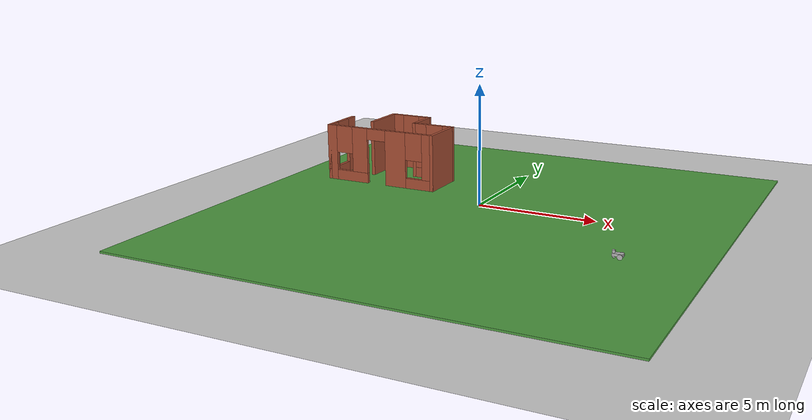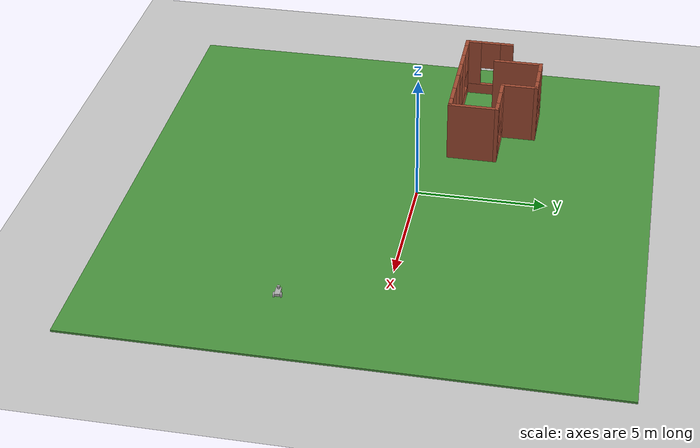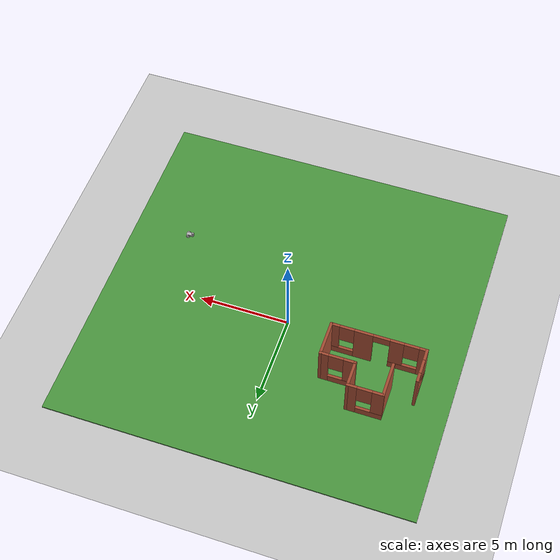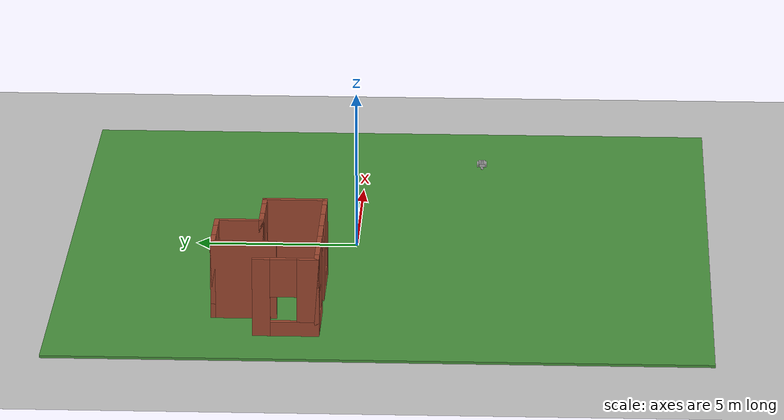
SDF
<sdf version="1.6">
 <world name="default">
  <light name="sun" type="directional">
   <pose>0 0 10 0 -0 0</pose>
   <diffuse>0.8 0.8 0.8 1</diffuse>
   <specular>0.1 0.1 0.1 1</specular>
   <attenuation>
    <range>1000</range>
    <constant>0.9</constant>
    <linear>0.01</linear>
    <quadratic>0.001</quadratic>
   </attenuation>
   <direction>-0.5 0.5 -1</direction>
  </light>
  <model name="ground_plane">
   <static>1</static>
   <link name="link">
    <collision name="collision">
     <geometry><plane><normal>0 0 1</normal><size>100 100</size></plane></geometry>
     <surface><friction><ode><mu>100</mu><mu2>50</mu2></ode></friction></surface>
    </collision>
    <visual name="visual">
     <cast_shadows>0</cast_shadows>
     <geometry><plane><normal>0 0 1</normal><size>100 100</size></plane></geometry>
     <material>
      <script><uri>file://media/materials/scripts/gazebo.material</uri><name>Gazebo/Grey</name></script>
     </material>
    </visual>
   </link>
  </model>
  <gravity>0 0 -9.8</gravity>
  <magnetic_field>6e-06 2.3e-05 -4.2e-05</magnetic_field>
  <atmosphere type="adiabatic"/>
  <physics name="default_physics" default="0" type="ode">
   <max_step_size>0.001</max_step_size>
   <real_time_factor>1</real_time_factor>
   <real_time_update_rate>1000</real_time_update_rate>
  </physics>
  <scene>
   <ambient>0.4 0.4 0.4 1</ambient>
   <sky><clouds><speed>12</speed></clouds></sky>
   <shadows>1</shadows>
  </scene>
  <spherical_coordinates>
   <surface_model>EARTH_WGS84</surface_model>
   <latitude_deg>0</latitude_deg>
   <longitude_deg>0</longitude_deg>
   <elevation>0</elevation>
   <heading_deg>0</heading_deg>
  </spherical_coordinates>
  <model name="grass_0">
   <static>1</static>
   <link name="link">
    <collision name="collision"><geometry><box><size>20 20 0.1</size></box></geometry></collision>
    <visual name="visual">
     <cast_shadows>0</cast_shadows>
     <geometry><box><size>20 20 0.1</size></box></geometry>
     <material>
      <script>
       <uri>model://grass/materials/scripts</uri>
       <uri>model://grass/materials/textures</uri>
       <name>vrc/grass</name>
      </script>
     </material>
    </visual>
   </link>
   <pose>0.361504 -1.01514 0 0 -0 0</pose>
  </model>
  <model name="buil1">
   <pose>-5.20351 2.44747 0 0 -0 0</pose>
   <link name="Wall_0">
    <pose>-2.55 -0.675 0 0 0 -1.5708</pose>
    <visual name="Wall_0_Visual_0">
     <pose>-0.7325 0 1.25 0 -0 0</pose>
     <geometry><box><size>0.535 0.15 2.5</size></box></geometry>
     <material>
      <script><uri>file://media/materials/scripts/gazebo.material</uri><name>Gazebo/Bricks</name></script>
      <ambient>0.760784 0.662745 0.627451 1</ambient>
     </material>
    </visual>
    <collision name="Wall_0_Collision_0">
     <geometry><box><size>0.535 0.15 2.5</size></box></geometry>
     <pose>-0.7325 0 1.25 0 -0 0</pose>
    </collision>
    <visual name="Wall_0_Visual_1">
     <pose>0.2675 0 0.25 0 -0 0</pose>
     <geometry><box><size>1.465 0.15 0.5</size></box></geometry>
     <material>
      <script><uri>file://media/materials/scripts/gazebo.material</uri><name>Gazebo/Bricks</name></script>
      <ambient>0.760784 0.662745 0.627451 1</ambient>
     </material>
    </visual>
    <collision name="Wall_0_Collision_1">
     <geometry><box><size>1.465 0.15 0.5</size></box></geometry>
     <pose>0.2675 0 0.25 0 -0 0</pose>
    </collision>
    <visual name="Wall_0_Visual_2">
     <pose>0.6675 0 1.5 0 -0 0</pose>
     <geometry><box><size>0.665 0.15 2</size></box></geometry>
     <material>
      <script><uri>file://media/materials/scripts/gazebo.material</uri><name>Gazebo/Bricks</name></script>
      <ambient>0.760784 0.662745 0.627451 1</ambient>
     </material>
    </visual>
    <collision name="Wall_0_Collision_2">
     <geometry><box><size>0.665 0.15 2</size></box></geometry>
     <pose>0.6675 0 1.5 0 -0 0</pose>
    </collision>
    <visual name="Wall_0_Visual_3">
     <pose>-0.065 0 1.9 0 -0 0</pose>
     <geometry><box><size>0.8 0.15 1.2</size></box></geometry>
     <material>
      <script><uri>file://media/materials/scripts/gazebo.material</uri><name>Gazebo/Bricks</name></script>
      <ambient>0.760784 0.662745 0.627451 1</ambient>
     </material>
    </visual>
    <collision name="Wall_0_Collision_3">
     <geometry><box><size>0.8 0.15 1.2</size></box></geometry>
     <pose>-0.065 0 1.9 0 -0 0</pose>
    </collision>
   </link>
   <link name="Wall_1">
    <pose>0 -1.6 0 0 -0 0</pose>
    <visual name="Wall_1_Visual_0">
     <pose>-2.3925 0 1.25 0 -0 0</pose>
     <geometry><box><size>0.465 0.15 2.5</size></box></geometry>
     <material>
      <script><uri>file://media/materials/scripts/gazebo.material</uri><name>Gazebo/Bricks</name></script>
      <ambient>0.760784 0.662745 0.627451 1</ambient>
     </material>
    </visual>
    <collision name="Wall_1_Collision_0">
     <geometry><box><size>0.465 0.15 2.5</size></box></geometry>
     <pose>-2.3925 0 1.25 0 -0 0</pose>
    </collision>
    <visual name="Wall_1_Visual_1">
     <pose>0.79 0 1.25 0 -0 0</pose>
     <geometry><box><size>1 0.15 2.5</size></box></geometry>
     <material>
      <script><uri>file://media/materials/scripts/gazebo.material</uri><name>Gazebo/Bricks</name></script>
      <ambient>0.760784 0.662745 0.627451 1</ambient>
     </material>
    </visual>
    <collision name="Wall_1_Collision_1">
     <geometry><box><size>1 0.15 2.5</size></box></geometry>
     <pose>0.79 0 1.25 0 -0 0</pose>
    </collision>
    <visual name="Wall_1_Visual_2">
     <pose>-1.385 0 0.25 0 -0 0</pose>
     <geometry><box><size>1.55 0.15 0.5</size></box></geometry>
     <material>
      <script><uri>file://media/materials/scripts/gazebo.material</uri><name>Gazebo/Bricks</name></script>
      <ambient>0.760784 0.662745 0.627451 1</ambient>
     </material>
    </visual>
    <collision name="Wall_1_Collision_2">
     <geometry><box><size>1.55 0.15 0.5</size></box></geometry>
     <pose>-1.385 0 0.25 0 -0 0</pose>
    </collision>
    <visual name="Wall_1_Visual_3">
     <pose>1.9575 0 0.25 0 -0 0</pose>
     <geometry><box><size>1.335 0.15 0.5</size></box></geometry>
     <material>
      <script><uri>file://media/materials/scripts/gazebo.material</uri><name>Gazebo/Bricks</name></script>
      <ambient>0.760784 0.662745 0.627451 1</ambient>
     </material>
    </visual>
    <collision name="Wall_1_Collision_3">
     <geometry><box><size>1.335 0.15 0.5</size></box></geometry>
     <pose>1.9575 0 0.25 0 -0 0</pose>
    </collision>
    <visual name="Wall_1_Visual_4">
     <pose>-0.985 0 1.5 0 -0 0</pose>
     <geometry><box><size>0.75 0.15 2</size></box></geometry>
     <material>
      <script><uri>file://media/materials/scripts/gazebo.material</uri><name>Gazebo/Bricks</name></script>
      <ambient>0.760784 0.662745 0.627451 1</ambient>
     </material>
    </visual>
    <collision name="Wall_1_Collision_4">
     <geometry><box><size>0.75 0.15 2</size></box></geometry>
     <pose>-0.985 0 1.5 0 -0 0</pose>
    </collision>
    <visual name="Wall_1_Visual_5">
     <pose>-0.985 0 1.5 0 -0 0</pose>
     <geometry><box><size>0.75 0.15 2</size></box></geometry>
     <material>
      <script><uri>file://media/materials/scripts/gazebo.material</uri><name>Gazebo/Bricks</name></script>
      <ambient>0.760784 0.662745 0.627451 1</ambient>
     </material>
    </visual>
    <collision name="Wall_1_Collision_5">
     <geometry><box><size>0.75 0.15 2</size></box></geometry>
     <pose>-0.985 0 1.5 0 -0 0</pose>
    </collision>
    <visual name="Wall_1_Visual_6">
     <pose>2.3575 0 1.5 0 -0 0</pose>
     <geometry><box><size>0.535 0.15 2</size></box></geometry>
     <material>
      <script><uri>file://media/materials/scripts/gazebo.material</uri><name>Gazebo/Bricks</name></script>
      <ambient>0.760784 0.662745 0.627451 1</ambient>
     </material>
    </visual>
    <collision name="Wall_1_Collision_6">
     <geometry><box><size>0.535 0.15 2</size></box></geometry>
     <pose>2.3575 0 1.5 0 -0 0</pose>
    </collision>
    <visual name="Wall_1_Visual_7">
     <pose>-1.76 0 1.9 0 -0 0</pose>
     <geometry><box><size>0.8 0.15 1.2</size></box></geometry>
     <material>
      <script><uri>file://media/materials/scripts/gazebo.material</uri><name>Gazebo/Bricks</name></script>
      <ambient>0.760784 0.662745 0.627451 1</ambient>
     </material>
    </visual>
    <collision name="Wall_1_Collision_7">
     <geometry><box><size>0.8 0.15 1.2</size></box></geometry>
     <pose>-1.76 0 1.9 0 -0 0</pose>
    </collision>
    <visual name="Wall_1_Visual_8">
     <pose>1.69 0 1.9 0 -0 0</pose>
     <geometry><box><size>0.8 0.15 1.2</size></box></geometry>
     <material>
      <script><uri>file://media/materials/scripts/gazebo.material</uri><name>Gazebo/Bricks</name></script>
      <ambient>0.760784 0.662745 0.627451 1</ambient>
     </material>
    </visual>
    <collision name="Wall_1_Collision_8">
     <geometry><box><size>0.8 0.15 1.2</size></box></geometry>
     <pose>1.69 0 1.9 0 -0 0</pose>
    </collision>
    <visual name="Wall_1_Visual_9">
     <pose>-0.16 0 2.25 0 -0 0</pose>
     <geometry><box><size>0.9 0.15 0.5</size></box></geometry>
     <material>
      <script><uri>file://media/materials/scripts/gazebo.material</uri><name>Gazebo/Bricks</name></script>
      <ambient>0.760784 0.662745 0.627451 1</ambient>
     </material>
    </visual>
    <collision name="Wall_1_Collision_9">
     <geometry><box><size>0.9 0.15 0.5</size></box></geometry>
     <pose>-0.16 0 2.25 0 -0 0</pose>
    </collision>
    <visual name="Wall_1_Visual_10">
     <pose>-0.16 0 2.25 0 -0 0</pose>
     <geometry><box><size>0.9 0.15 0.5</size></box></geometry>
     <material>
      <script><uri>file://media/materials/scripts/gazebo.material</uri><name>Gazebo/Bricks</name></script>
      <ambient>0.760784 0.662745 0.627451 1</ambient>
     </material>
    </visual>
    <collision name="Wall_1_Collision_10">
     <geometry><box><size>0.9 0.15 0.5</size></box></geometry>
     <pose>-0.16 0 2.25 0 -0 0</pose>
    </collision>
   </link>
   <link name="Wall_2">
    <collision name="Wall_2_Collision">
     <geometry><box><size>2 0.15 2.5</size></box></geometry>
     <pose>0 0 1.25 0 -0 0</pose>
    </collision>
    <visual name="Wall_2_Visual">
     <pose>0 0 1.25 0 -0 0</pose>
     <geometry><box><size>2 0.15 2.5</size></box></geometry>
     <material>
      <script><uri>file://media/materials/scripts/gazebo.material</uri><name>Gazebo/Bricks</name></script>
      <ambient>0.760784 0.662745 0.627451 1</ambient>
     </material>
    </visual>
    <pose>2.55 -0.675 0 0 -0 1.5708</pose>
   </link>
   <link name="Wall_3">
    <pose>1.625 0.25 0 0 -0 3.14159</pose>
    <visual name="Wall_3_Visual_0">
     <pose>-0.7425 0 1.25 0 -0 0</pose>
     <geometry><box><size>0.515 0.15 2.5</size></box></geometry>
     <material>
      <script><uri>file://media/materials/scripts/gazebo.material</uri><name>Gazebo/Bricks</name></script>
      <ambient>0.760784 0.662745 0.627451 1</ambient>
     </material>
    </visual>
    <collision name="Wall_3_Collision_0">
     <geometry><box><size>0.515 0.15 2.5</size></box></geometry>
     <pose>-0.7425 0 1.25 0 -0 0</pose>
    </collision>
    <visual name="Wall_3_Visual_1">
     <pose>0.2575 0 0.25 0 -0 0</pose>
     <geometry><box><size>1.485 0.15 0.5</size></box></geometry>
     <material>
      <script><uri>file://media/materials/scripts/gazebo.material</uri><name>Gazebo/Bricks</name></script>
      <ambient>0.760784 0.662745 0.627451 1</ambient>
     </material>
    </visual>
    <collision name="Wall_3_Collision_1">
     <geometry><box><size>1.485 0.15 0.5</size></box></geometry>
     <pose>0.2575 0 0.25 0 -0 0</pose>
    </collision>
    <visual name="Wall_3_Visual_2">
     <pose>0.6575 0 1.5 0 -0 0</pose>
     <geometry><box><size>0.685 0.15 2</size></box></geometry>
     <material>
      <script><uri>file://media/materials/scripts/gazebo.material</uri><name>Gazebo/Bricks</name></script>
      <ambient>0.760784 0.662745 0.627451 1</ambient>
     </material>
    </visual>
    <collision name="Wall_3_Collision_2">
     <geometry><box><size>0.685 0.15 2</size></box></geometry>
     <pose>0.6575 0 1.5 0 -0 0</pose>
    </collision>
    <visual name="Wall_3_Visual_3">
     <pose>-0.085 0 1.9 0 -0 0</pose>
     <geometry><box><size>0.8 0.15 1.2</size></box></geometry>
     <material>
      <script><uri>file://media/materials/scripts/gazebo.material</uri><name>Gazebo/Bricks</name></script>
      <ambient>0.760784 0.662745 0.627451 1</ambient>
     </material>
    </visual>
    <collision name="Wall_3_Collision_3">
     <geometry><box><size>0.8 0.15 1.2</size></box></geometry>
     <pose>-0.085 0 1.9 0 -0 0</pose>
    </collision>
   </link>
   <link name="Wall_4">
    <collision name="Wall_4_Collision">
     <geometry><box><size>1.5 0.15 2.5</size></box></geometry>
     <pose>0 0 1.25 0 -0 0</pose>
    </collision>
    <visual name="Wall_4_Visual">
     <pose>0 0 1.25 0 -0 0</pose>
     <geometry><box><size>1.5 0.15 2.5</size></box></geometry>
     <material>
      <script><uri>file://media/materials/scripts/gazebo.material</uri><name>Gazebo/Bricks</name></script>
      <ambient>0.760784 0.662745 0.627451 1</ambient>
     </material>
    </visual>
    <pose>0.7 0.925 0 0 -0 1.5708</pose>
   </link>
   <link name="Wall_5">
    <pose>-0.225 1.6 0 0 -0 3.14159</pose>
    <visual name="Wall_5_Visual_0">
     <pose>-0.7125 0 1.25 0 -0 0</pose>
     <geometry><box><size>0.575 0.15 2.5</size></box></geometry>
     <material>
      <script><uri>file://media/materials/scripts/gazebo.material</uri><name>Gazebo/Bricks</name></script>
      <ambient>0.760784 0.662745 0.627451 1</ambient>
     </material>
    </visual>
    <collision name="Wall_5_Collision_0">
     <geometry><box><size>0.575 0.15 2.5</size></box></geometry>
     <pose>-0.7125 0 1.25 0 -0 0</pose>
    </collision>
    <visual name="Wall_5_Visual_1">
     <pose>0.2875 0 0.25 0 -0 0</pose>
     <geometry><box><size>1.425 0.15 0.5</size></box></geometry>
     <material>
      <script><uri>file://media/materials/scripts/gazebo.material</uri><name>Gazebo/Bricks</name></script>
      <ambient>0.760784 0.662745 0.627451 1</ambient>
     </material>
    </visual>
    <collision name="Wall_5_Collision_1">
     <geometry><box><size>1.425 0.15 0.5</size></box></geometry>
     <pose>0.2875 0 0.25 0 -0 0</pose>
    </collision>
    <visual name="Wall_5_Visual_2">
     <pose>0.6875 0 1.5 0 -0 0</pose>
     <geometry><box><size>0.625 0.15 2</size></box></geometry>
     <material>
      <script><uri>file://media/materials/scripts/gazebo.material</uri><name>Gazebo/Bricks</name></script>
      <ambient>0.760784 0.662745 0.627451 1</ambient>
     </material>
    </visual>
    <collision name="Wall_5_Collision_2">
     <geometry><box><size>0.625 0.15 2</size></box></geometry>
     <pose>0.6875 0 1.5 0 -0 0</pose>
    </collision>
    <visual name="Wall_5_Visual_3">
     <pose>-0.025 0 1.9 0 -0 0</pose>
     <geometry><box><size>0.8 0.15 1.2</size></box></geometry>
     <material>
      <script><uri>file://media/materials/scripts/gazebo.material</uri><name>Gazebo/Bricks</name></script>
      <ambient>0.760784 0.662745 0.627451 1</ambient>
     </material>
    </visual>
    <collision name="Wall_5_Collision_3">
     <geometry><box><size>0.8 0.15 1.2</size></box></geometry>
     <pose>-0.025 0 1.9 0 -0 0</pose>
    </collision>
   </link>
   <link name="Wall_6">
    <collision name="Wall_6_Collision">
     <geometry><box><size>2 0.15 2.5</size></box></geometry>
     <pose>0 0 1.25 0 -0 0</pose>
    </collision>
    <visual name="Wall_6_Visual">
     <pose>0 0 1.25 0 -0 0</pose>
     <geometry><box><size>2 0.15 2.5</size></box></geometry>
     <material>
      <script><uri>file://media/materials/scripts/gazebo.material</uri><name>Gazebo/Bricks</name></script>
      <ambient>0.760784 0.662745 0.627451 1</ambient>
     </material>
    </visual>
    <pose>-1.15 0.675 0 0 0 -1.5708</pose>
   </link>
   <static>1</static>
  </model>
  <model name="my_robot_0">
   <static>0</static>
   <link name="chassis">
    <pose>0 0 0.1 0 -0 0</pose>
    <collision name="collision"><geometry><box><size>0.4 0.2 0.1</size></box></geometry></collision>
    <visual name="visual">
     <pose>0 0 0.05 0 -0 0</pose>
     <geometry><box><size>0.4 0.2 0.1</size></box></geometry>
    </visual>
    <collision name="caster_collision">
     <pose>-0.15 0 -0.05 0 -0 0</pose>
     <geometry><sphere><radius>0.05</radius></sphere></geometry>
     <surface><friction><ode><mu>0</mu><mu2>0</mu2><slip1>1</slip1><slip2>1</slip2></ode></friction></surface>
    </collision>
    <visual name="caster_visual">
     <pose>-0.15 0 -0.05 0 -0 0</pose>
     <geometry><sphere><radius>0.05</radius></sphere></geometry>
    </visual>
    <inertial>
     <inertia><ixx>1</ixx><ixy>0</ixy><ixz>0</ixz><iyy>1</iyy><iyz>0</iyz><izz>1</izz></inertia>
     <mass>1</mass>
    </inertial>
   </link>
   <link name="left_wheel">
    <pose>0.1 0.13 0.1 -0 1.5707 1.5707</pose>
    <collision name="collision">
     <geometry><cylinder><radius>0.1</radius><length>0.05</length></cylinder></geometry>
    </collision>
    <visual name="visual">
     <geometry><cylinder><radius>0.1</radius><length>0.05</length></cylinder></geometry>
    </visual>
    <inertial>
     <inertia><ixx>1</ixx><ixy>0</ixy><ixz>0</ixz><iyy>1</iyy><iyz>0</iyz><izz>1</izz></inertia>
     <mass>1</mass>
    </inertial>
   </link>
   <link name="right_wheel">
    <pose>0.1 -0.13 0.1 -0 1.5707 1.5707</pose>
    <collision name="collision">
     <geometry><cylinder><radius>0.1</radius><length>0.05</length></cylinder></geometry>
    </collision>
    <visual name="visual">
     <geometry><cylinder><radius>0.1</radius><length>0.05</length></cylinder></geometry>
    </visual>
    <inertial>
     <inertia><ixx>1</ixx><ixy>0</ixy><ixz>0</ixz><iyy>1</iyy><iyz>0</iyz><izz>1</izz></inertia>
     <mass>1</mass>
    </inertial>
   </link>
   <joint name="left_wheel_hinge" type="revolute">
    <pose>0 0 -0.03 0 -0 0</pose>
    <child>left_wheel</child>
    <parent>chassis</parent>
    <axis>
     <xyz>0 1 0</xyz>
     <use_parent_model_frame>1</use_parent_model_frame>
     <limit><lower>-1e+16</lower><upper>1e+16</upper></limit>
     <dynamics><spring_reference>0</spring_reference><spring_stiffness>0</spring_stiffness></dynamics>
    </axis>
   </joint>
   <joint name="right_wheel_hinge" type="revolute">
    <pose>0 0 0.03 0 -0 0</pose>
    <child>right_wheel</child>
    <parent>chassis</parent>
    <axis>
     <xyz>0 1 0</xyz>
     <use_parent_model_frame>1</use_parent_model_frame>
     <limit><lower>-1e+16</lower><upper>1e+16</upper></limit>
     <dynamics><spring_reference>0</spring_reference><spring_stiffness>0</spring_stiffness></dynamics>
    </axis>
   </joint>
   <link name="camera::link">
    <gravity>0</gravity>
    <pose>-0.150005 5e-06 0.25 0 -0 3.1415</pose>
    <inertial>
     <mass>0.1</mass>
     <inertia><ixx>1</ixx><ixy>0</ixy><ixz>0</ixz><iyy>1</iyy><iyz>0</iyz><izz>1</izz></inertia>
    </inertial>
    <visual name="visual"><geometry><box><size>0.1 0.1 0.1</size></box></geometry></visual>
    <sensor name="camera" type="camera">
     <camera name="__default__">
      <horizontal_fov>1.047</horizontal_fov>
      <image><width>320</width><height>240</height></image>
      <clip><near>0.1</near><far>100</far></clip>
     </camera>
     <always_on>1</always_on>
     <update_rate>30</update_rate>
     <visualize>1</visualize>
    </sensor>
   </link>
   <joint name="cam_joint" type="fixed"><child>camera::link</child><parent>chassis</parent></joint>
   <pose>7.12007 -3.77313 0.050001 4.7e-05 -9e-06 0.054725</pose>
  </model>
 </world>
</sdf>
